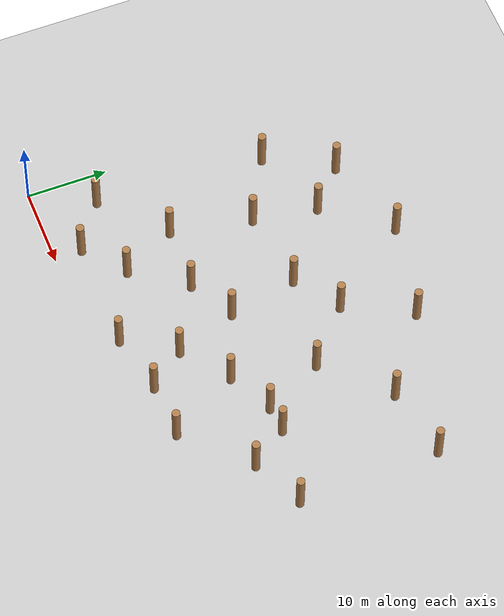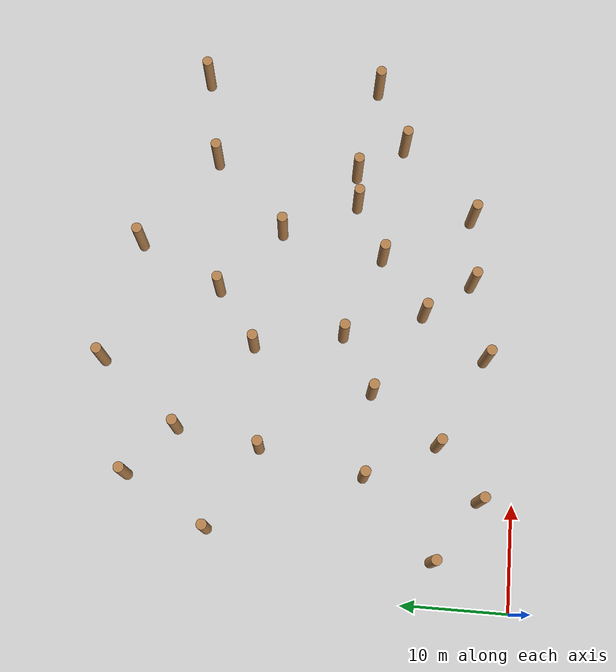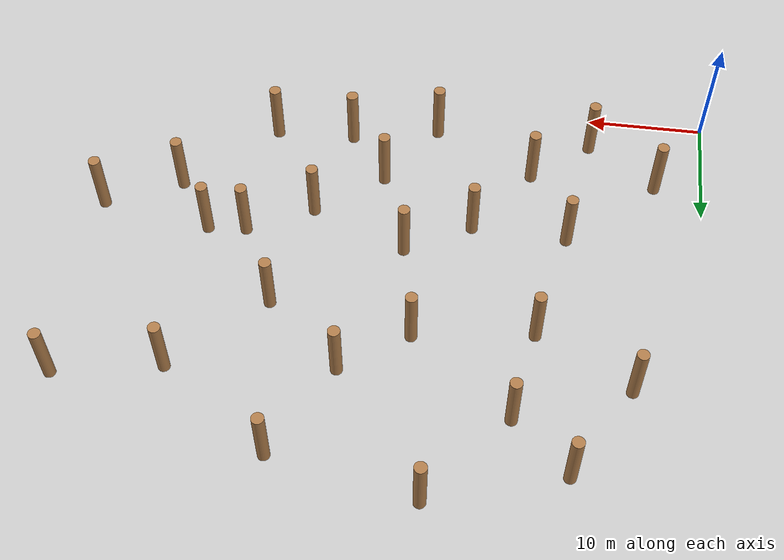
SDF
<sdf version="1.6">
 <world name="default">
  <model name="ground_plane">
   <static>1</static>
   <link name="link">
    <collision name="collision">
     <geometry><plane><normal>0 0 1</normal><size>100 100</size></plane></geometry>
     <surface><friction><ode><mu>100</mu><mu2>50</mu2></ode></friction></surface>
    </collision>
    <visual name="visual">
     <cast_shadows>0</cast_shadows>
     <geometry><plane><normal>0 0 1</normal><size>100 100</size></plane></geometry>
     <material>
      <script><uri>file://media/materials/scripts/gazebo.material</uri><name>Gazebo/Grey</name></script>
     </material>
    </visual>
   </link>
  </model>
  <model name="WoodPillars_3">
   <link name="link_clone_32">
    <inertial>
     <mass>1</mass>
     <inertia><ixx>0.145833</ixx><ixy>0</ixy><ixz>0</ixz><iyy>0.145833</iyy><iyz>0</iyz><izz>0.125</izz></inertia>
    </inertial>
    <pose>-4.82669 -14.2698 -0 0 -0 -0.001289</pose>
    <visual name="visual">
     <geometry><cylinder><radius>0.5</radius><length>5.50507</length></cylinder></geometry>
     <material>
      <script><name>Gazebo/Wood</name><uri>file://media/materials/scripts/gazebo.material</uri></script>
      <shader type="pixel"/>
     </material>
    </visual>
    <collision name="collision">
     <geometry><cylinder><radius>0.5</radius><length>5.50507</length></cylinder></geometry>
     <surface>
      <friction>
       <ode><mu>1</mu><mu2>1</mu2><fdir1>0 0 0</fdir1><slip1>0</slip1><slip2>0</slip2></ode>
       <torsional>
        <coefficient>1</coefficient>
        <patch_radius>0</patch_radius>
        <surface_radius>0</surface_radius>
        <use_patch_radius>1</use_patch_radius>
        <ode><slip>0</slip></ode>
       </torsional>
      </friction>
      <bounce><restitution_coefficient>0</restitution_coefficient><threshold>1e+06</threshold></bounce>
      <contact>
       <collide_without_contact>0</collide_without_contact>
       <collide_without_contact_bitmask>1</collide_without_contact_bitmask>
       <collide_bitmask>1</collide_bitmask>
       <ode>
        <soft_cfm>0</soft_cfm>
        <soft_erp>0.2</soft_erp>
        <kp>1e+13</kp>
        <kd>1</kd>
        <max_vel>0.01</max_vel>
        <min_depth>0</min_depth>
       </ode>
       <bullet>
        <split_impulse>1</split_impulse>
        <split_impulse_penetration_threshold>-0.01</split_impulse_penetration_threshold>
        <soft_cfm>0</soft_cfm>
        <soft_erp>0.2</soft_erp>
        <kp>1e+13</kp>
        <kd>1</kd>
       </bullet>
      </contact>
     </surface>
    </collision>
   </link>
   <link name="link_clone_35">
    <inertial>
     <mass>1</mass>
     <inertia><ixx>0.145833</ixx><ixy>0</ixy><ixz>0</ixz><iyy>0.145833</iyy><iyz>0</iyz><izz>0.125</izz></inertia>
    </inertial>
    <pose>-5.14728 3.10998 -0 0 -0 -0.001289</pose>
    <visual name="visual">
     <geometry><cylinder><radius>0.5</radius><length>5.50507</length></cylinder></geometry>
     <material>
      <script><name>Gazebo/Wood</name><uri>file://media/materials/scripts/gazebo.material</uri></script>
      <shader type="pixel"/>
     </material>
    </visual>
    <collision name="collision">
     <geometry><cylinder><radius>0.5</radius><length>5.50507</length></cylinder></geometry>
     <surface>
      <friction>
       <ode><mu>1</mu><mu2>1</mu2><fdir1>0 0 0</fdir1><slip1>0</slip1><slip2>0</slip2></ode>
       <torsional>
        <coefficient>1</coefficient>
        <patch_radius>0</patch_radius>
        <surface_radius>0</surface_radius>
        <use_patch_radius>1</use_patch_radius>
        <ode><slip>0</slip></ode>
       </torsional>
      </friction>
      <bounce><restitution_coefficient>0</restitution_coefficient><threshold>1e+06</threshold></bounce>
      <contact>
       <collide_without_contact>0</collide_without_contact>
       <collide_without_contact_bitmask>1</collide_without_contact_bitmask>
       <collide_bitmask>1</collide_bitmask>
       <ode>
        <soft_cfm>0</soft_cfm>
        <soft_erp>0.2</soft_erp>
        <kp>1e+13</kp>
        <kd>1</kd>
        <max_vel>0.01</max_vel>
        <min_depth>0</min_depth>
       </ode>
       <bullet>
        <split_impulse>1</split_impulse>
        <split_impulse_penetration_threshold>-0.01</split_impulse_penetration_threshold>
        <soft_cfm>0</soft_cfm>
        <soft_erp>0.2</soft_erp>
        <kp>1e+13</kp>
        <kd>1</kd>
       </bullet>
      </contact>
     </surface>
    </collision>
   </link>
   <static>0</static>
   <pose>56.0351 29.4798 2.75253 0 -0 0.001532</pose>
  </model>
  <model name="WoodPillars_6">
   <link name="link">
    <inertial>
     <mass>1</mass>
     <inertia><ixx>0.145833</ixx><ixy>0</ixy><ixz>0</ixz><iyy>0.145833</iyy><iyz>0</iyz><izz>0.125</izz></inertia>
    </inertial>
    <visual name="visual">
     <geometry><cylinder><radius>0.5</radius><length>5.50507</length></cylinder></geometry>
     <material>
      <script><name>Gazebo/Wood</name><uri>file://media/materials/scripts/gazebo.material</uri></script>
     </material>
    </visual>
    <collision name="collision">
     <geometry><cylinder><radius>0.5</radius><length>5.50507</length></cylinder></geometry>
     <surface>
      <friction>
       <ode><mu>1</mu><mu2>1</mu2><fdir1>0 0 0</fdir1><slip1>0</slip1><slip2>0</slip2></ode>
       <torsional>
        <coefficient>1</coefficient>
        <patch_radius>0</patch_radius>
        <surface_radius>0</surface_radius>
        <use_patch_radius>1</use_patch_radius>
        <ode><slip>0</slip></ode>
       </torsional>
      </friction>
      <bounce><restitution_coefficient>0</restitution_coefficient><threshold>1e+06</threshold></bounce>
      <contact>
       <collide_without_contact>0</collide_without_contact>
       <collide_without_contact_bitmask>1</collide_without_contact_bitmask>
       <collide_bitmask>1</collide_bitmask>
       <ode>
        <soft_cfm>0</soft_cfm>
        <soft_erp>0.2</soft_erp>
        <kp>1e+13</kp>
        <kd>1</kd>
        <max_vel>0.01</max_vel>
        <min_depth>0</min_depth>
       </ode>
       <bullet>
        <split_impulse>1</split_impulse>
        <split_impulse_penetration_threshold>-0.01</split_impulse_penetration_threshold>
        <soft_cfm>0</soft_cfm>
        <soft_erp>0.2</soft_erp>
        <kp>1e+13</kp>
        <kd>1</kd>
       </bullet>
      </contact>
     </surface>
    </collision>
   </link>
   <link name="link_clone">
    <inertial>
     <mass>1</mass>
     <inertia><ixx>0.145833</ixx><ixy>0</ixy><ixz>0</ixz><iyy>0.145833</iyy><iyz>0</iyz><izz>0.125</izz></inertia>
    </inertial>
    <pose>17.6954 -2.91348 -2e-06 0 -0 -0.001289</pose>
    <visual name="visual">
     <geometry><cylinder><radius>0.5</radius><length>5.50507</length></cylinder></geometry>
     <material>
      <script><name>Gazebo/Wood</name><uri>file://media/materials/scripts/gazebo.material</uri></script>
      <shader type="pixel"/>
     </material>
    </visual>
    <collision name="collision">
     <geometry><cylinder><radius>0.5</radius><length>5.50507</length></cylinder></geometry>
     <surface>
      <friction>
       <ode><mu>1</mu><mu2>1</mu2><fdir1>0 0 0</fdir1><slip1>0</slip1><slip2>0</slip2></ode>
       <torsional>
        <coefficient>1</coefficient>
        <patch_radius>0</patch_radius>
        <surface_radius>0</surface_radius>
        <use_patch_radius>1</use_patch_radius>
        <ode><slip>0</slip></ode>
       </torsional>
      </friction>
      <bounce><restitution_coefficient>0</restitution_coefficient><threshold>1e+06</threshold></bounce>
      <contact>
       <collide_without_contact>0</collide_without_contact>
       <collide_without_contact_bitmask>1</collide_without_contact_bitmask>
       <collide_bitmask>1</collide_bitmask>
       <ode>
        <soft_cfm>0</soft_cfm>
        <soft_erp>0.2</soft_erp>
        <kp>1e+13</kp>
        <kd>1</kd>
        <max_vel>0.01</max_vel>
        <min_depth>0</min_depth>
       </ode>
       <bullet>
        <split_impulse>1</split_impulse>
        <split_impulse_penetration_threshold>-0.01</split_impulse_penetration_threshold>
        <soft_cfm>0</soft_cfm>
        <soft_erp>0.2</soft_erp>
        <kp>1e+13</kp>
        <kd>1</kd>
       </bullet>
      </contact>
     </surface>
    </collision>
   </link>
   <link name="link_clone_12">
    <inertial>
     <mass>1</mass>
     <inertia><ixx>0.145833</ixx><ixy>0</ixy><ixz>0</ixz><iyy>0.145833</iyy><iyz>0</iyz><izz>0.125</izz></inertia>
    </inertial>
    <pose>36.6063 2.3916 -3e-06 0 -0 -0.001289</pose>
    <visual name="visual">
     <geometry><cylinder><radius>0.5</radius><length>5.50507</length></cylinder></geometry>
     <material>
      <script><name>Gazebo/Wood</name><uri>file://media/materials/scripts/gazebo.material</uri></script>
      <shader type="pixel"/>
     </material>
    </visual>
    <collision name="collision">
     <geometry><cylinder><radius>0.5</radius><length>5.50507</length></cylinder></geometry>
     <surface>
      <friction>
       <ode><mu>1</mu><mu2>1</mu2><fdir1>0 0 0</fdir1><slip1>0</slip1><slip2>0</slip2></ode>
       <torsional>
        <coefficient>1</coefficient>
        <patch_radius>0</patch_radius>
        <surface_radius>0</surface_radius>
        <use_patch_radius>1</use_patch_radius>
        <ode><slip>0</slip></ode>
       </torsional>
      </friction>
      <bounce><restitution_coefficient>0</restitution_coefficient><threshold>1e+06</threshold></bounce>
      <contact>
       <collide_without_contact>0</collide_without_contact>
       <collide_without_contact_bitmask>1</collide_without_contact_bitmask>
       <collide_bitmask>1</collide_bitmask>
       <ode>
        <soft_cfm>0</soft_cfm>
        <soft_erp>0.2</soft_erp>
        <kp>1e+13</kp>
        <kd>1</kd>
        <max_vel>0.01</max_vel>
        <min_depth>0</min_depth>
       </ode>
       <bullet>
        <split_impulse>1</split_impulse>
        <split_impulse_penetration_threshold>-0.01</split_impulse_penetration_threshold>
        <soft_cfm>0</soft_cfm>
        <soft_erp>0.2</soft_erp>
        <kp>1e+13</kp>
        <kd>1</kd>
       </bullet>
      </contact>
     </surface>
    </collision>
   </link>
   <link name="link_clone_13">
    <inertial>
     <mass>1</mass>
     <inertia><ixx>0.145833</ixx><ixy>0</ixy><ixz>0</ixz><iyy>0.145833</iyy><iyz>0</iyz><izz>0.125</izz></inertia>
    </inertial>
    <pose>32.2715 -23.3528 -3e-06 0 -0 -0.001289</pose>
    <visual name="visual">
     <geometry><cylinder><radius>0.5</radius><length>5.50507</length></cylinder></geometry>
     <material>
      <script><name>Gazebo/Wood</name><uri>file://media/materials/scripts/gazebo.material</uri></script>
      <shader type="pixel"/>
     </material>
    </visual>
    <collision name="collision">
     <geometry><cylinder><radius>0.5</radius><length>5.50507</length></cylinder></geometry>
     <surface>
      <friction>
       <ode><mu>1</mu><mu2>1</mu2><fdir1>0 0 0</fdir1><slip1>0</slip1><slip2>0</slip2></ode>
       <torsional>
        <coefficient>1</coefficient>
        <patch_radius>0</patch_radius>
        <surface_radius>0</surface_radius>
        <use_patch_radius>1</use_patch_radius>
        <ode><slip>0</slip></ode>
       </torsional>
      </friction>
      <bounce><restitution_coefficient>0</restitution_coefficient><threshold>1e+06</threshold></bounce>
      <contact>
       <collide_without_contact>0</collide_without_contact>
       <collide_without_contact_bitmask>1</collide_without_contact_bitmask>
       <collide_bitmask>1</collide_bitmask>
       <ode>
        <soft_cfm>0</soft_cfm>
        <soft_erp>0.2</soft_erp>
        <kp>1e+13</kp>
        <kd>1</kd>
        <max_vel>0.01</max_vel>
        <min_depth>0</min_depth>
       </ode>
       <bullet>
        <split_impulse>1</split_impulse>
        <split_impulse_penetration_threshold>-0.01</split_impulse_penetration_threshold>
        <soft_cfm>0</soft_cfm>
        <soft_erp>0.2</soft_erp>
        <kp>1e+13</kp>
        <kd>1</kd>
       </bullet>
      </contact>
     </surface>
    </collision>
   </link>
   <link name="link_clone_14">
    <inertial>
     <mass>1</mass>
     <inertia><ixx>0.145833</ixx><ixy>0</ixy><ixz>0</ixz><iyy>0.145833</iyy><iyz>0</iyz><izz>0.125</izz></inertia>
    </inertial>
    <pose>9.31461 -20.9997 -1e-06 0 -0 -0.001289</pose>
    <visual name="visual">
     <geometry><cylinder><radius>0.5</radius><length>5.50507</length></cylinder></geometry>
     <material>
      <script><name>Gazebo/Wood</name><uri>file://media/materials/scripts/gazebo.material</uri></script>
      <shader type="pixel"/>
     </material>
    </visual>
    <collision name="collision">
     <geometry><cylinder><radius>0.5</radius><length>5.50507</length></cylinder></geometry>
     <surface>
      <friction>
       <ode><mu>1</mu><mu2>1</mu2><fdir1>0 0 0</fdir1><slip1>0</slip1><slip2>0</slip2></ode>
       <torsional>
        <coefficient>1</coefficient>
        <patch_radius>0</patch_radius>
        <surface_radius>0</surface_radius>
        <use_patch_radius>1</use_patch_radius>
        <ode><slip>0</slip></ode>
       </torsional>
      </friction>
      <bounce><restitution_coefficient>0</restitution_coefficient><threshold>1e+06</threshold></bounce>
      <contact>
       <collide_without_contact>0</collide_without_contact>
       <collide_without_contact_bitmask>1</collide_without_contact_bitmask>
       <collide_bitmask>1</collide_bitmask>
       <ode>
        <soft_cfm>0</soft_cfm>
        <soft_erp>0.2</soft_erp>
        <kp>1e+13</kp>
        <kd>1</kd>
        <max_vel>0.01</max_vel>
        <min_depth>0</min_depth>
       </ode>
       <bullet>
        <split_impulse>1</split_impulse>
        <split_impulse_penetration_threshold>-0.01</split_impulse_penetration_threshold>
        <soft_cfm>0</soft_cfm>
        <soft_erp>0.2</soft_erp>
        <kp>1e+13</kp>
        <kd>1</kd>
       </bullet>
      </contact>
     </surface>
    </collision>
   </link>
   <link name="link_clone_15">
    <inertial>
     <mass>1</mass>
     <inertia><ixx>0.145833</ixx><ixy>0</ixy><ixz>0</ixz><iyy>0.145833</iyy><iyz>0</iyz><izz>0.125</izz></inertia>
    </inertial>
    <pose>17.9894 -25.1945 -2e-06 0 -0 -0.001289</pose>
    <visual name="visual">
     <geometry><cylinder><radius>0.5</radius><length>5.50507</length></cylinder></geometry>
     <material>
      <script><name>Gazebo/Wood</name><uri>file://media/materials/scripts/gazebo.material</uri></script>
      <shader type="pixel"/>
     </material>
    </visual>
    <collision name="collision">
     <geometry><cylinder><radius>0.5</radius><length>5.50507</length></cylinder></geometry>
     <surface>
      <friction>
       <ode><mu>1</mu><mu2>1</mu2><fdir1>0 0 0</fdir1><slip1>0</slip1><slip2>0</slip2></ode>
       <torsional>
        <coefficient>1</coefficient>
        <patch_radius>0</patch_radius>
        <surface_radius>0</surface_radius>
        <use_patch_radius>1</use_patch_radius>
        <ode><slip>0</slip></ode>
       </torsional>
      </friction>
      <bounce><restitution_coefficient>0</restitution_coefficient><threshold>1e+06</threshold></bounce>
      <contact>
       <collide_without_contact>0</collide_without_contact>
       <collide_without_contact_bitmask>1</collide_without_contact_bitmask>
       <collide_bitmask>1</collide_bitmask>
       <ode>
        <soft_cfm>0</soft_cfm>
        <soft_erp>0.2</soft_erp>
        <kp>1e+13</kp>
        <kd>1</kd>
        <max_vel>0.01</max_vel>
        <min_depth>0</min_depth>
       </ode>
       <bullet>
        <split_impulse>1</split_impulse>
        <split_impulse_penetration_threshold>-0.01</split_impulse_penetration_threshold>
        <soft_cfm>0</soft_cfm>
        <soft_erp>0.2</soft_erp>
        <kp>1e+13</kp>
        <kd>1</kd>
       </bullet>
      </contact>
     </surface>
    </collision>
   </link>
   <link name="link_clone_16">
    <inertial>
     <mass>1</mass>
     <inertia><ixx>0.145833</ixx><ixy>0</ixy><ixz>0</ixz><iyy>0.145833</iyy><iyz>0</iyz><izz>0.125</izz></inertia>
    </inertial>
    <pose>32.9662 -11.9429 -3e-06 0 -0 -0.001289</pose>
    <visual name="visual">
     <geometry><cylinder><radius>0.5</radius><length>5.50507</length></cylinder></geometry>
     <material>
      <script><name>Gazebo/Wood</name><uri>file://media/materials/scripts/gazebo.material</uri></script>
      <shader type="pixel"/>
     </material>
    </visual>
    <collision name="collision">
     <geometry><cylinder><radius>0.5</radius><length>5.50507</length></cylinder></geometry>
     <surface>
      <friction>
       <ode><mu>1</mu><mu2>1</mu2><fdir1>0 0 0</fdir1><slip1>0</slip1><slip2>0</slip2></ode>
       <torsional>
        <coefficient>1</coefficient>
        <patch_radius>0</patch_radius>
        <surface_radius>0</surface_radius>
        <use_patch_radius>1</use_patch_radius>
        <ode><slip>0</slip></ode>
       </torsional>
      </friction>
      <bounce><restitution_coefficient>0</restitution_coefficient><threshold>1e+06</threshold></bounce>
      <contact>
       <collide_without_contact>0</collide_without_contact>
       <collide_without_contact_bitmask>1</collide_without_contact_bitmask>
       <collide_bitmask>1</collide_bitmask>
       <ode>
        <soft_cfm>0</soft_cfm>
        <soft_erp>0.2</soft_erp>
        <kp>1e+13</kp>
        <kd>1</kd>
        <max_vel>0.01</max_vel>
        <min_depth>0</min_depth>
       </ode>
       <bullet>
        <split_impulse>1</split_impulse>
        <split_impulse_penetration_threshold>-0.01</split_impulse_penetration_threshold>
        <soft_cfm>0</soft_cfm>
        <soft_erp>0.2</soft_erp>
        <kp>1e+13</kp>
        <kd>1</kd>
       </bullet>
      </contact>
     </surface>
    </collision>
   </link>
   <link name="link_clone_17">
    <inertial>
     <mass>1</mass>
     <inertia><ixx>0.145833</ixx><ixy>0</ixy><ixz>0</ixz><iyy>0.145833</iyy><iyz>0</iyz><izz>0.125</izz></inertia>
    </inertial>
    <pose>19.3784 -11.4604 -2e-06 0 -0 -0.001289</pose>
    <visual name="visual">
     <geometry><cylinder><radius>0.5</radius><length>5.50507</length></cylinder></geometry>
     <material>
      <script><name>Gazebo/Wood</name><uri>file://media/materials/scripts/gazebo.material</uri></script>
      <shader type="pixel"/>
     </material>
    </visual>
    <collision name="collision">
     <geometry><cylinder><radius>0.5</radius><length>5.50507</length></cylinder></geometry>
     <surface>
      <friction>
       <ode><mu>1</mu><mu2>1</mu2><fdir1>0 0 0</fdir1><slip1>0</slip1><slip2>0</slip2></ode>
       <torsional>
        <coefficient>1</coefficient>
        <patch_radius>0</patch_radius>
        <surface_radius>0</surface_radius>
        <use_patch_radius>1</use_patch_radius>
        <ode><slip>0</slip></ode>
       </torsional>
      </friction>
      <bounce><restitution_coefficient>0</restitution_coefficient><threshold>1e+06</threshold></bounce>
      <contact>
       <collide_without_contact>0</collide_without_contact>
       <collide_without_contact_bitmask>1</collide_without_contact_bitmask>
       <collide_bitmask>1</collide_bitmask>
       <ode>
        <soft_cfm>0</soft_cfm>
        <soft_erp>0.2</soft_erp>
        <kp>1e+13</kp>
        <kd>1</kd>
        <max_vel>0.01</max_vel>
        <min_depth>0</min_depth>
       </ode>
       <bullet>
        <split_impulse>1</split_impulse>
        <split_impulse_penetration_threshold>-0.01</split_impulse_penetration_threshold>
        <soft_cfm>0</soft_cfm>
        <soft_erp>0.2</soft_erp>
        <kp>1e+13</kp>
        <kd>1</kd>
       </bullet>
      </contact>
     </surface>
    </collision>
   </link>
   <link name="link_clone_18">
    <inertial>
     <mass>1</mass>
     <inertia><ixx>0.145833</ixx><ixy>0</ixy><ixz>0</ixz><iyy>0.145833</iyy><iyz>0</iyz><izz>0.125</izz></inertia>
    </inertial>
    <pose>9.1573 3.67739 -1e-06 0 -0 -0.001289</pose>
    <visual name="visual">
     <geometry><cylinder><radius>0.5</radius><length>5.50507</length></cylinder></geometry>
     <material>
      <script><name>Gazebo/Wood</name><uri>file://media/materials/scripts/gazebo.material</uri></script>
      <shader type="pixel"/>
     </material>
    </visual>
    <collision name="collision">
     <geometry><cylinder><radius>0.5</radius><length>5.50507</length></cylinder></geometry>
     <surface>
      <friction>
       <ode><mu>1</mu><mu2>1</mu2><fdir1>0 0 0</fdir1><slip1>0</slip1><slip2>0</slip2></ode>
       <torsional>
        <coefficient>1</coefficient>
        <patch_radius>0</patch_radius>
        <surface_radius>0</surface_radius>
        <use_patch_radius>1</use_patch_radius>
        <ode><slip>0</slip></ode>
       </torsional>
      </friction>
      <bounce><restitution_coefficient>0</restitution_coefficient><threshold>1e+06</threshold></bounce>
      <contact>
       <collide_without_contact>0</collide_without_contact>
       <collide_without_contact_bitmask>1</collide_without_contact_bitmask>
       <collide_bitmask>1</collide_bitmask>
       <ode>
        <soft_cfm>0</soft_cfm>
        <soft_erp>0.2</soft_erp>
        <kp>1e+13</kp>
        <kd>1</kd>
        <max_vel>0.01</max_vel>
        <min_depth>0</min_depth>
       </ode>
       <bullet>
        <split_impulse>1</split_impulse>
        <split_impulse_penetration_threshold>-0.01</split_impulse_penetration_threshold>
        <soft_cfm>0</soft_cfm>
        <soft_erp>0.2</soft_erp>
        <kp>1e+13</kp>
        <kd>1</kd>
       </bullet>
      </contact>
     </surface>
    </collision>
   </link>
   <link name="link_clone_21">
    <inertial>
     <mass>1</mass>
     <inertia><ixx>0.145833</ixx><ixy>0</ixy><ixz>0</ixz><iyy>0.145833</iyy><iyz>0</iyz><izz>0.125</izz></inertia>
    </inertial>
    <pose>15.2748 11.406 -1e-06 0 -0 -0.001289</pose>
    <visual name="visual">
     <geometry><cylinder><radius>0.5</radius><length>5.50507</length></cylinder></geometry>
     <material>
      <script><name>Gazebo/Wood</name><uri>file://media/materials/scripts/gazebo.material</uri></script>
      <shader type="pixel"/>
     </material>
    </visual>
    <collision name="collision">
     <geometry><cylinder><radius>0.5</radius><length>5.50507</length></cylinder></geometry>
     <surface>
      <friction>
       <ode><mu>1</mu><mu2>1</mu2><fdir1>0 0 0</fdir1><slip1>0</slip1><slip2>0</slip2></ode>
       <torsional>
        <coefficient>1</coefficient>
        <patch_radius>0</patch_radius>
        <surface_radius>0</surface_radius>
        <use_patch_radius>1</use_patch_radius>
        <ode><slip>0</slip></ode>
       </torsional>
      </friction>
      <bounce><restitution_coefficient>0</restitution_coefficient><threshold>1e+06</threshold></bounce>
      <contact>
       <collide_without_contact>0</collide_without_contact>
       <collide_without_contact_bitmask>1</collide_without_contact_bitmask>
       <collide_bitmask>1</collide_bitmask>
       <ode>
        <soft_cfm>0</soft_cfm>
        <soft_erp>0.2</soft_erp>
        <kp>1e+13</kp>
        <kd>1</kd>
        <max_vel>0.01</max_vel>
        <min_depth>0</min_depth>
       </ode>
       <bullet>
        <split_impulse>1</split_impulse>
        <split_impulse_penetration_threshold>-0.01</split_impulse_penetration_threshold>
        <soft_cfm>0</soft_cfm>
        <soft_erp>0.2</soft_erp>
        <kp>1e+13</kp>
        <kd>1</kd>
       </bullet>
      </contact>
     </surface>
    </collision>
   </link>
   <link name="link_clone_22">
    <inertial>
     <mass>1</mass>
     <inertia><ixx>0.145833</ixx><ixy>0</ixy><ixz>0</ixz><iyy>0.145833</iyy><iyz>0</iyz><izz>0.125</izz></inertia>
    </inertial>
    <pose>27.313 9.05961 -2e-06 0 -0 -0.001289</pose>
    <visual name="visual">
     <geometry><cylinder><radius>0.5</radius><length>5.50507</length></cylinder></geometry>
     <material>
      <script><name>Gazebo/Wood</name><uri>file://media/materials/scripts/gazebo.material</uri></script>
      <shader type="pixel"/>
     </material>
    </visual>
    <collision name="collision">
     <geometry><cylinder><radius>0.5</radius><length>5.50507</length></cylinder></geometry>
     <surface>
      <friction>
       <ode><mu>1</mu><mu2>1</mu2><fdir1>0 0 0</fdir1><slip1>0</slip1><slip2>0</slip2></ode>
       <torsional>
        <coefficient>1</coefficient>
        <patch_radius>0</patch_radius>
        <surface_radius>0</surface_radius>
        <use_patch_radius>1</use_patch_radius>
        <ode><slip>0</slip></ode>
       </torsional>
      </friction>
      <bounce><restitution_coefficient>0</restitution_coefficient><threshold>1e+06</threshold></bounce>
      <contact>
       <collide_without_contact>0</collide_without_contact>
       <collide_without_contact_bitmask>1</collide_without_contact_bitmask>
       <collide_bitmask>1</collide_bitmask>
       <ode>
        <soft_cfm>0</soft_cfm>
        <soft_erp>0.2</soft_erp>
        <kp>1e+13</kp>
        <kd>1</kd>
        <max_vel>0.01</max_vel>
        <min_depth>0</min_depth>
       </ode>
       <bullet>
        <split_impulse>1</split_impulse>
        <split_impulse_penetration_threshold>-0.01</split_impulse_penetration_threshold>
        <soft_cfm>0</soft_cfm>
        <soft_erp>0.2</soft_erp>
        <kp>1e+13</kp>
        <kd>1</kd>
       </bullet>
      </contact>
     </surface>
    </collision>
   </link>
   <link name="link_clone_23">
    <inertial>
     <mass>1</mass>
     <inertia><ixx>0.145833</ixx><ixy>0</ixy><ixz>0</ixz><iyy>0.145833</iyy><iyz>0</iyz><izz>0.125</izz></inertia>
    </inertial>
    <pose>29.5176 -4.71623 -3e-06 0 -0 -0.001289</pose>
    <visual name="visual">
     <geometry><cylinder><radius>0.5</radius><length>5.50507</length></cylinder></geometry>
     <material>
      <script><name>Gazebo/Wood</name><uri>file://media/materials/scripts/gazebo.material</uri></script>
      <shader type="pixel"/>
     </material>
    </visual>
    <collision name="collision">
     <geometry><cylinder><radius>0.5</radius><length>5.50507</length></cylinder></geometry>
     <surface>
      <friction>
       <ode><mu>1</mu><mu2>1</mu2><fdir1>0 0 0</fdir1><slip1>0</slip1><slip2>0</slip2></ode>
       <torsional>
        <coefficient>1</coefficient>
        <patch_radius>0</patch_radius>
        <surface_radius>0</surface_radius>
        <use_patch_radius>1</use_patch_radius>
        <ode><slip>0</slip></ode>
       </torsional>
      </friction>
      <bounce><restitution_coefficient>0</restitution_coefficient><threshold>1e+06</threshold></bounce>
      <contact>
       <collide_without_contact>0</collide_without_contact>
       <collide_without_contact_bitmask>1</collide_without_contact_bitmask>
       <collide_bitmask>1</collide_bitmask>
       <ode>
        <soft_cfm>0</soft_cfm>
        <soft_erp>0.2</soft_erp>
        <kp>1e+13</kp>
        <kd>1</kd>
        <max_vel>0.01</max_vel>
        <min_depth>0</min_depth>
       </ode>
       <bullet>
        <split_impulse>1</split_impulse>
        <split_impulse_penetration_threshold>-0.01</split_impulse_penetration_threshold>
        <soft_cfm>0</soft_cfm>
        <soft_erp>0.2</soft_erp>
        <kp>1e+13</kp>
        <kd>1</kd>
       </bullet>
      </contact>
     </surface>
    </collision>
   </link>
   <link name="link_clone_24">
    <inertial>
     <mass>1</mass>
     <inertia><ixx>0.145833</ixx><ixy>0</ixy><ixz>0</ixz><iyy>0.145833</iyy><iyz>0</iyz><izz>0.125</izz></inertia>
    </inertial>
    <pose>7.84688 -4.26113 -1e-06 0 -0 -0.001289</pose>
    <visual name="visual">
     <geometry><cylinder><radius>0.5</radius><length>5.50507</length></cylinder></geometry>
     <material>
      <script><name>Gazebo/Wood</name><uri>file://media/materials/scripts/gazebo.material</uri></script>
      <shader type="pixel"/>
     </material>
    </visual>
    <collision name="collision">
     <geometry><cylinder><radius>0.5</radius><length>5.50507</length></cylinder></geometry>
     <surface>
      <friction>
       <ode><mu>1</mu><mu2>1</mu2><fdir1>0 0 0</fdir1><slip1>0</slip1><slip2>0</slip2></ode>
       <torsional>
        <coefficient>1</coefficient>
        <patch_radius>0</patch_radius>
        <surface_radius>0</surface_radius>
        <use_patch_radius>1</use_patch_radius>
        <ode><slip>0</slip></ode>
       </torsional>
      </friction>
      <bounce><restitution_coefficient>0</restitution_coefficient><threshold>1e+06</threshold></bounce>
      <contact>
       <collide_without_contact>0</collide_without_contact>
       <collide_without_contact_bitmask>1</collide_without_contact_bitmask>
       <collide_bitmask>1</collide_bitmask>
       <ode>
        <soft_cfm>0</soft_cfm>
        <soft_erp>0.2</soft_erp>
        <kp>1e+13</kp>
        <kd>1</kd>
        <max_vel>0.01</max_vel>
        <min_depth>0</min_depth>
       </ode>
       <bullet>
        <split_impulse>1</split_impulse>
        <split_impulse_penetration_threshold>-0.01</split_impulse_penetration_threshold>
        <soft_cfm>0</soft_cfm>
        <soft_erp>0.2</soft_erp>
        <kp>1e+13</kp>
        <kd>1</kd>
       </bullet>
      </contact>
     </surface>
    </collision>
   </link>
   <link name="link_clone_26">
    <inertial>
     <mass>1</mass>
     <inertia><ixx>0.145833</ixx><ixy>0</ixy><ixz>0</ixz><iyy>0.145833</iyy><iyz>0</iyz><izz>0.125</izz></inertia>
    </inertial>
    <pose>13.9187 -14.5508 -1e-06 0 -0 -0.001289</pose>
    <visual name="visual">
     <geometry><cylinder><radius>0.5</radius><length>5.50507</length></cylinder></geometry>
     <material>
      <script><name>Gazebo/Wood</name><uri>file://media/materials/scripts/gazebo.material</uri></script>
      <shader type="pixel"/>
     </material>
    </visual>
    <collision name="collision">
     <geometry><cylinder><radius>0.5</radius><length>5.50507</length></cylinder></geometry>
     <surface>
      <friction>
       <ode><mu>1</mu><mu2>1</mu2><fdir1>0 0 0</fdir1><slip1>0</slip1><slip2>0</slip2></ode>
       <torsional>
        <coefficient>1</coefficient>
        <patch_radius>0</patch_radius>
        <surface_radius>0</surface_radius>
        <use_patch_radius>1</use_patch_radius>
        <ode><slip>0</slip></ode>
       </torsional>
      </friction>
      <bounce><restitution_coefficient>0</restitution_coefficient><threshold>1e+06</threshold></bounce>
      <contact>
       <collide_without_contact>0</collide_without_contact>
       <collide_without_contact_bitmask>1</collide_without_contact_bitmask>
       <collide_bitmask>1</collide_bitmask>
       <ode>
        <soft_cfm>0</soft_cfm>
        <soft_erp>0.2</soft_erp>
        <kp>1e+13</kp>
        <kd>1</kd>
        <max_vel>0.01</max_vel>
        <min_depth>0</min_depth>
       </ode>
       <bullet>
        <split_impulse>1</split_impulse>
        <split_impulse_penetration_threshold>-0.01</split_impulse_penetration_threshold>
        <soft_cfm>0</soft_cfm>
        <soft_erp>0.2</soft_erp>
        <kp>1e+13</kp>
        <kd>1</kd>
       </bullet>
      </contact>
     </surface>
    </collision>
   </link>
   <link name="link_clone_27">
    <inertial>
     <mass>1</mass>
     <inertia><ixx>0.145833</ixx><ixy>0</ixy><ixz>0</ixz><iyy>0.145833</iyy><iyz>0</iyz><izz>0.125</izz></inertia>
    </inertial>
    <pose>4.38632 -25.0605 -1e-06 0 -0 -0.001289</pose>
    <visual name="visual">
     <geometry><cylinder><radius>0.5</radius><length>5.50507</length></cylinder></geometry>
     <material>
      <script><name>Gazebo/Wood</name><uri>file://media/materials/scripts/gazebo.material</uri></script>
      <shader type="pixel"/>
     </material>
    </visual>
    <collision name="collision">
     <geometry><cylinder><radius>0.5</radius><length>5.50507</length></cylinder></geometry>
     <surface>
      <friction>
       <ode><mu>1</mu><mu2>1</mu2><fdir1>0 0 0</fdir1><slip1>0</slip1><slip2>0</slip2></ode>
       <torsional>
        <coefficient>1</coefficient>
        <patch_radius>0</patch_radius>
        <surface_radius>0</surface_radius>
        <use_patch_radius>1</use_patch_radius>
        <ode><slip>0</slip></ode>
       </torsional>
      </friction>
      <bounce><restitution_coefficient>0</restitution_coefficient><threshold>1e+06</threshold></bounce>
      <contact>
       <collide_without_contact>0</collide_without_contact>
       <collide_without_contact_bitmask>1</collide_without_contact_bitmask>
       <collide_bitmask>1</collide_bitmask>
       <ode>
        <soft_cfm>0</soft_cfm>
        <soft_erp>0.2</soft_erp>
        <kp>1e+13</kp>
        <kd>1</kd>
        <max_vel>0.01</max_vel>
        <min_depth>0</min_depth>
       </ode>
       <bullet>
        <split_impulse>1</split_impulse>
        <split_impulse_penetration_threshold>-0.01</split_impulse_penetration_threshold>
        <soft_cfm>0</soft_cfm>
        <soft_erp>0.2</soft_erp>
        <kp>1e+13</kp>
        <kd>1</kd>
       </bullet>
      </contact>
     </surface>
    </collision>
   </link>
   <link name="link_clone_28">
    <inertial>
     <mass>1</mass>
     <inertia><ixx>0.145833</ixx><ixy>0</ixy><ixz>0</ixz><iyy>0.145833</iyy><iyz>0</iyz><izz>0.125</izz></inertia>
    </inertial>
    <pose>27.5353 -14.766 -3e-06 0 -0 -0.001289</pose>
    <visual name="visual">
     <geometry><cylinder><radius>0.5</radius><length>5.50507</length></cylinder></geometry>
     <material>
      <script><name>Gazebo/Wood</name><uri>file://media/materials/scripts/gazebo.material</uri></script>
      <shader type="pixel"/>
     </material>
    </visual>
    <collision name="collision">
     <geometry><cylinder><radius>0.5</radius><length>5.50507</length></cylinder></geometry>
     <surface>
      <friction>
       <ode><mu>1</mu><mu2>1</mu2><fdir1>0 0 0</fdir1><slip1>0</slip1><slip2>0</slip2></ode>
       <torsional>
        <coefficient>1</coefficient>
        <patch_radius>0</patch_radius>
        <surface_radius>0</surface_radius>
        <use_patch_radius>1</use_patch_radius>
        <ode><slip>0</slip></ode>
       </torsional>
      </friction>
      <bounce><restitution_coefficient>0</restitution_coefficient><threshold>1e+06</threshold></bounce>
      <contact>
       <collide_without_contact>0</collide_without_contact>
       <collide_without_contact_bitmask>1</collide_without_contact_bitmask>
       <collide_bitmask>1</collide_bitmask>
       <ode>
        <soft_cfm>0</soft_cfm>
        <soft_erp>0.2</soft_erp>
        <kp>1e+13</kp>
        <kd>1</kd>
        <max_vel>0.01</max_vel>
        <min_depth>0</min_depth>
       </ode>
       <bullet>
        <split_impulse>1</split_impulse>
        <split_impulse_penetration_threshold>-0.01</split_impulse_penetration_threshold>
        <soft_cfm>0</soft_cfm>
        <soft_erp>0.2</soft_erp>
        <kp>1e+13</kp>
        <kd>1</kd>
       </bullet>
      </contact>
     </surface>
    </collision>
   </link>
   <link name="link_clone_29">
    <inertial>
     <mass>1</mass>
     <inertia><ixx>0.145833</ixx><ixy>0</ixy><ixz>0</ixz><iyy>0.145833</iyy><iyz>0</iyz><izz>0.125</izz></inertia>
    </inertial>
    <pose>39.4401 -16.2696 -4e-06 0 -0 -0.001289</pose>
    <visual name="visual">
     <geometry><cylinder><radius>0.5</radius><length>5.50507</length></cylinder></geometry>
     <material>
      <script><name>Gazebo/Wood</name><uri>file://media/materials/scripts/gazebo.material</uri></script>
      <shader type="pixel"/>
     </material>
    </visual>
    <collision name="collision">
     <geometry><cylinder><radius>0.5</radius><length>5.50507</length></cylinder></geometry>
     <surface>
      <friction>
       <ode><mu>1</mu><mu2>1</mu2><fdir1>0 0 0</fdir1><slip1>0</slip1><slip2>0</slip2></ode>
       <torsional>
        <coefficient>1</coefficient>
        <patch_radius>0</patch_radius>
        <surface_radius>0</surface_radius>
        <use_patch_radius>1</use_patch_radius>
        <ode><slip>0</slip></ode>
       </torsional>
      </friction>
      <bounce><restitution_coefficient>0</restitution_coefficient><threshold>1e+06</threshold></bounce>
      <contact>
       <collide_without_contact>0</collide_without_contact>
       <collide_without_contact_bitmask>1</collide_without_contact_bitmask>
       <collide_bitmask>1</collide_bitmask>
       <ode>
        <soft_cfm>0</soft_cfm>
        <soft_erp>0.2</soft_erp>
        <kp>1e+13</kp>
        <kd>1</kd>
        <max_vel>0.01</max_vel>
        <min_depth>0</min_depth>
       </ode>
       <bullet>
        <split_impulse>1</split_impulse>
        <split_impulse_penetration_threshold>-0.01</split_impulse_penetration_threshold>
        <soft_cfm>0</soft_cfm>
        <soft_erp>0.2</soft_erp>
        <kp>1e+13</kp>
        <kd>1</kd>
       </bullet>
      </contact>
     </surface>
    </collision>
   </link>
   <link name="link_clone_30">
    <inertial>
     <mass>1</mass>
     <inertia><ixx>0.145833</ixx><ixy>0</ixy><ixz>0</ixz><iyy>0.145833</iyy><iyz>0</iyz><izz>0.125</izz></inertia>
    </inertial>
    <pose>4.46339 7.97492 0 0 -0 -0.001289</pose>
    <visual name="visual">
     <geometry><cylinder><radius>0.5</radius><length>5.50507</length></cylinder></geometry>
     <material>
      <script><name>Gazebo/Wood</name><uri>file://media/materials/scripts/gazebo.material</uri></script>
      <shader type="pixel"/>
     </material>
    </visual>
    <collision name="collision">
     <geometry><cylinder><radius>0.5</radius><length>5.50507</length></cylinder></geometry>
     <surface>
      <friction>
       <ode><mu>1</mu><mu2>1</mu2><fdir1>0 0 0</fdir1><slip1>0</slip1><slip2>0</slip2></ode>
       <torsional>
        <coefficient>1</coefficient>
        <patch_radius>0</patch_radius>
        <surface_radius>0</surface_radius>
        <use_patch_radius>1</use_patch_radius>
        <ode><slip>0</slip></ode>
       </torsional>
      </friction>
      <bounce><restitution_coefficient>0</restitution_coefficient><threshold>1e+06</threshold></bounce>
      <contact>
       <collide_without_contact>0</collide_without_contact>
       <collide_without_contact_bitmask>1</collide_without_contact_bitmask>
       <collide_bitmask>1</collide_bitmask>
       <ode>
        <soft_cfm>0</soft_cfm>
        <soft_erp>0.2</soft_erp>
        <kp>1e+13</kp>
        <kd>1</kd>
        <max_vel>0.01</max_vel>
        <min_depth>0</min_depth>
       </ode>
       <bullet>
        <split_impulse>1</split_impulse>
        <split_impulse_penetration_threshold>-0.01</split_impulse_penetration_threshold>
        <soft_cfm>0</soft_cfm>
        <soft_erp>0.2</soft_erp>
        <kp>1e+13</kp>
        <kd>1</kd>
       </bullet>
      </contact>
     </surface>
    </collision>
   </link>
   <link name="link_clone_34">
    <inertial>
     <mass>1</mass>
     <inertia><ixx>0.145833</ixx><ixy>0</ixy><ixz>0</ixz><iyy>0.145833</iyy><iyz>0</iyz><izz>0.125</izz></inertia>
    </inertial>
    <pose>25.4673 -23.5908 -3e-06 0 -0 -0.001289</pose>
    <visual name="visual">
     <geometry><cylinder><radius>0.5</radius><length>5.50507</length></cylinder></geometry>
     <material>
      <script><name>Gazebo/Wood</name><uri>file://media/materials/scripts/gazebo.material</uri></script>
      <shader type="pixel"/>
     </material>
    </visual>
    <collision name="collision">
     <geometry><cylinder><radius>0.5</radius><length>5.50507</length></cylinder></geometry>
     <surface>
      <friction>
       <ode><mu>1</mu><mu2>1</mu2><fdir1>0 0 0</fdir1><slip1>0</slip1><slip2>0</slip2></ode>
       <torsional>
        <coefficient>1</coefficient>
        <patch_radius>0</patch_radius>
        <surface_radius>0</surface_radius>
        <use_patch_radius>1</use_patch_radius>
        <ode><slip>0</slip></ode>
       </torsional>
      </friction>
      <bounce><restitution_coefficient>0</restitution_coefficient><threshold>1e+06</threshold></bounce>
      <contact>
       <collide_without_contact>0</collide_without_contact>
       <collide_without_contact_bitmask>1</collide_without_contact_bitmask>
       <collide_bitmask>1</collide_bitmask>
       <ode>
        <soft_cfm>0</soft_cfm>
        <soft_erp>0.2</soft_erp>
        <kp>1e+13</kp>
        <kd>1</kd>
        <max_vel>0.01</max_vel>
        <min_depth>0</min_depth>
       </ode>
       <bullet>
        <split_impulse>1</split_impulse>
        <split_impulse_penetration_threshold>-0.01</split_impulse_penetration_threshold>
        <soft_cfm>0</soft_cfm>
        <soft_erp>0.2</soft_erp>
        <kp>1e+13</kp>
        <kd>1</kd>
       </bullet>
      </contact>
     </surface>
    </collision>
   </link>
   <link name="link_clone_4">
    <inertial>
     <mass>1</mass>
     <inertia><ixx>0.145833</ixx><ixy>0</ixy><ixz>0</ixz><iyy>0.145833</iyy><iyz>0</iyz><izz>0.125</izz></inertia>
    </inertial>
    <pose>23.1128 0.93751 -2e-06 0 -0 -0.001289</pose>
    <visual name="visual">
     <geometry><cylinder><radius>0.5</radius><length>5.50507</length></cylinder></geometry>
     <material>
      <script><name>Gazebo/Wood</name><uri>file://media/materials/scripts/gazebo.material</uri></script>
      <shader type="pixel"/>
     </material>
    </visual>
    <collision name="collision">
     <geometry><cylinder><radius>0.5</radius><length>5.50507</length></cylinder></geometry>
     <surface>
      <friction>
       <ode><mu>1</mu><mu2>1</mu2><fdir1>0 0 0</fdir1><slip1>0</slip1><slip2>0</slip2></ode>
       <torsional>
        <coefficient>1</coefficient>
        <patch_radius>0</patch_radius>
        <surface_radius>0</surface_radius>
        <use_patch_radius>1</use_patch_radius>
        <ode><slip>0</slip></ode>
       </torsional>
      </friction>
      <bounce><restitution_coefficient>0</restitution_coefficient><threshold>1e+06</threshold></bounce>
      <contact>
       <collide_without_contact>0</collide_without_contact>
       <collide_without_contact_bitmask>1</collide_without_contact_bitmask>
       <collide_bitmask>1</collide_bitmask>
       <ode>
        <soft_cfm>0</soft_cfm>
        <soft_erp>0.2</soft_erp>
        <kp>1e+13</kp>
        <kd>1</kd>
        <max_vel>0.01</max_vel>
        <min_depth>0</min_depth>
       </ode>
       <bullet>
        <split_impulse>1</split_impulse>
        <split_impulse_penetration_threshold>-0.01</split_impulse_penetration_threshold>
        <soft_cfm>0</soft_cfm>
        <soft_erp>0.2</soft_erp>
        <kp>1e+13</kp>
        <kd>1</kd>
       </bullet>
      </contact>
     </surface>
    </collision>
   </link>
   <link name="link_clone_6">
    <inertial>
     <mass>1</mass>
     <inertia><ixx>0.145833</ixx><ixy>0</ixy><ixz>0</ixz><iyy>0.145833</iyy><iyz>0</iyz><izz>0.125</izz></inertia>
    </inertial>
    <pose>36.2258 -11.6926 -3e-06 0 -0 -0.001289</pose>
    <visual name="visual">
     <geometry><cylinder><radius>0.5</radius><length>5.50507</length></cylinder></geometry>
     <material>
      <script><name>Gazebo/Wood</name><uri>file://media/materials/scripts/gazebo.material</uri></script>
      <shader type="pixel"/>
     </material>
    </visual>
    <collision name="collision">
     <geometry><cylinder><radius>0.5</radius><length>5.50507</length></cylinder></geometry>
     <surface>
      <friction>
       <ode><mu>1</mu><mu2>1</mu2><fdir1>0 0 0</fdir1><slip1>0</slip1><slip2>0</slip2></ode>
       <torsional>
        <coefficient>1</coefficient>
        <patch_radius>0</patch_radius>
        <surface_radius>0</surface_radius>
        <use_patch_radius>1</use_patch_radius>
        <ode><slip>0</slip></ode>
       </torsional>
      </friction>
      <bounce><restitution_coefficient>0</restitution_coefficient><threshold>1e+06</threshold></bounce>
      <contact>
       <collide_without_contact>0</collide_without_contact>
       <collide_without_contact_bitmask>1</collide_without_contact_bitmask>
       <collide_bitmask>1</collide_bitmask>
       <ode>
        <soft_cfm>0</soft_cfm>
        <soft_erp>0.2</soft_erp>
        <kp>1e+13</kp>
        <kd>1</kd>
        <max_vel>0.01</max_vel>
        <min_depth>0</min_depth>
       </ode>
       <bullet>
        <split_impulse>1</split_impulse>
        <split_impulse_penetration_threshold>-0.01</split_impulse_penetration_threshold>
        <soft_cfm>0</soft_cfm>
        <soft_erp>0.2</soft_erp>
        <kp>1e+13</kp>
        <kd>1</kd>
       </bullet>
      </contact>
     </surface>
    </collision>
   </link>
   <link name="link_clone_7">
    <inertial>
     <mass>1</mass>
     <inertia><ixx>0.145833</ixx><ixy>0</ixy><ixz>0</ixz><iyy>0.145833</iyy><iyz>0</iyz><izz>0.125</izz></inertia>
    </inertial>
    <pose>22.0331 -19.0814 -2e-06 0 -0 -0.001289</pose>
    <visual name="visual">
     <geometry><cylinder><radius>0.5</radius><length>5.50507</length></cylinder></geometry>
     <material>
      <script><name>Gazebo/Wood</name><uri>file://media/materials/scripts/gazebo.material</uri></script>
      <shader type="pixel"/>
     </material>
    </visual>
    <collision name="collision">
     <geometry><cylinder><radius>0.5</radius><length>5.50507</length></cylinder></geometry>
     <surface>
      <friction>
       <ode><mu>1</mu><mu2>1</mu2><fdir1>0 0 0</fdir1><slip1>0</slip1><slip2>0</slip2></ode>
       <torsional>
        <coefficient>1</coefficient>
        <patch_radius>0</patch_radius>
        <surface_radius>0</surface_radius>
        <use_patch_radius>1</use_patch_radius>
        <ode><slip>0</slip></ode>
       </torsional>
      </friction>
      <bounce><restitution_coefficient>0</restitution_coefficient><threshold>1e+06</threshold></bounce>
      <contact>
       <collide_without_contact>0</collide_without_contact>
       <collide_without_contact_bitmask>1</collide_without_contact_bitmask>
       <collide_bitmask>1</collide_bitmask>
       <ode>
        <soft_cfm>0</soft_cfm>
        <soft_erp>0.2</soft_erp>
        <kp>1e+13</kp>
        <kd>1</kd>
        <max_vel>0.01</max_vel>
        <min_depth>0</min_depth>
       </ode>
       <bullet>
        <split_impulse>1</split_impulse>
        <split_impulse_penetration_threshold>-0.01</split_impulse_penetration_threshold>
        <soft_cfm>0</soft_cfm>
        <soft_erp>0.2</soft_erp>
        <kp>1e+13</kp>
        <kd>1</kd>
       </bullet>
      </contact>
     </surface>
    </collision>
   </link>
   <link name="link_clone_8">
    <inertial>
     <mass>1</mass>
     <inertia><ixx>0.145833</ixx><ixy>0</ixy><ixz>0</ixz><iyy>0.145833</iyy><iyz>0</iyz><izz>0.125</izz></inertia>
    </inertial>
    <pose>5.87636 -14.2578 -1e-06 0 -0 -0.001289</pose>
    <visual name="visual">
     <geometry><cylinder><radius>0.5</radius><length>5.50507</length></cylinder></geometry>
     <material>
      <script><name>Gazebo/Wood</name><uri>file://media/materials/scripts/gazebo.material</uri></script>
      <shader type="pixel"/>
     </material>
    </visual>
    <collision name="collision">
     <geometry><cylinder><radius>0.5</radius><length>5.50507</length></cylinder></geometry>
     <surface>
      <friction>
       <ode><mu>1</mu><mu2>1</mu2><fdir1>0 0 0</fdir1><slip1>0</slip1><slip2>0</slip2></ode>
       <torsional>
        <coefficient>1</coefficient>
        <patch_radius>0</patch_radius>
        <surface_radius>0</surface_radius>
        <use_patch_radius>1</use_patch_radius>
        <ode><slip>0</slip></ode>
       </torsional>
      </friction>
      <bounce><restitution_coefficient>0</restitution_coefficient><threshold>1e+06</threshold></bounce>
      <contact>
       <collide_without_contact>0</collide_without_contact>
       <collide_without_contact_bitmask>1</collide_without_contact_bitmask>
       <collide_bitmask>1</collide_bitmask>
       <ode>
        <soft_cfm>0</soft_cfm>
        <soft_erp>0.2</soft_erp>
        <kp>1e+13</kp>
        <kd>1</kd>
        <max_vel>0.01</max_vel>
        <min_depth>0</min_depth>
       </ode>
       <bullet>
        <split_impulse>1</split_impulse>
        <split_impulse_penetration_threshold>-0.01</split_impulse_penetration_threshold>
        <soft_cfm>0</soft_cfm>
        <soft_erp>0.2</soft_erp>
        <kp>1e+13</kp>
        <kd>1</kd>
       </bullet>
      </contact>
     </surface>
    </collision>
   </link>
   <link name="link_clone_9">
    <inertial>
     <mass>1</mass>
     <inertia><ixx>0.145833</ixx><ixy>0</ixy><ixz>0</ixz><iyy>0.145833</iyy><iyz>0</iyz><izz>0.125</izz></inertia>
    </inertial>
    <pose>-1.43964 -21.0028 0 0 -0 -0.001289</pose>
    <visual name="visual">
     <geometry><cylinder><radius>0.5</radius><length>5.50507</length></cylinder></geometry>
     <material>
      <script><name>Gazebo/Wood</name><uri>file://media/materials/scripts/gazebo.material</uri></script>
      <shader type="pixel"/>
     </material>
    </visual>
    <collision name="collision">
     <geometry><cylinder><radius>0.5</radius><length>5.50507</length></cylinder></geometry>
     <surface>
      <friction>
       <ode><mu>1</mu><mu2>1</mu2><fdir1>0 0 0</fdir1><slip1>0</slip1><slip2>0</slip2></ode>
       <torsional>
        <coefficient>1</coefficient>
        <patch_radius>0</patch_radius>
        <surface_radius>0</surface_radius>
        <use_patch_radius>1</use_patch_radius>
        <ode><slip>0</slip></ode>
       </torsional>
      </friction>
      <bounce><restitution_coefficient>0</restitution_coefficient><threshold>1e+06</threshold></bounce>
      <contact>
       <collide_without_contact>0</collide_without_contact>
       <collide_without_contact_bitmask>1</collide_without_contact_bitmask>
       <collide_bitmask>1</collide_bitmask>
       <ode>
        <soft_cfm>0</soft_cfm>
        <soft_erp>0.2</soft_erp>
        <kp>1e+13</kp>
        <kd>1</kd>
        <max_vel>0.01</max_vel>
        <min_depth>0</min_depth>
       </ode>
       <bullet>
        <split_impulse>1</split_impulse>
        <split_impulse_penetration_threshold>-0.01</split_impulse_penetration_threshold>
        <soft_cfm>0</soft_cfm>
        <soft_erp>0.2</soft_erp>
        <kp>1e+13</kp>
        <kd>1</kd>
       </bullet>
      </contact>
     </surface>
    </collision>
   </link>
   <static>0</static>
   <pose>5.51216 28.398 2.75253 0 -0 0.001688</pose>
  </model>
 </world>
</sdf>
